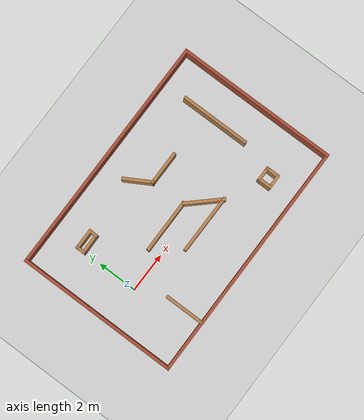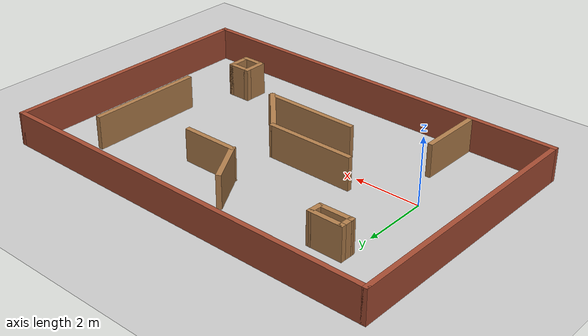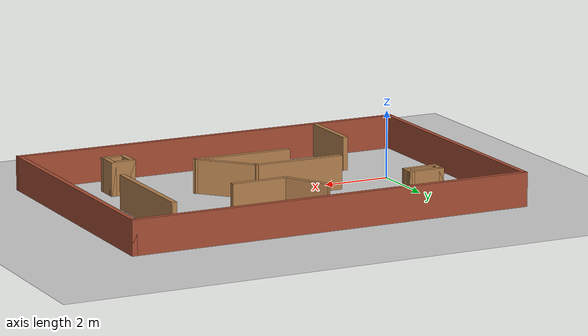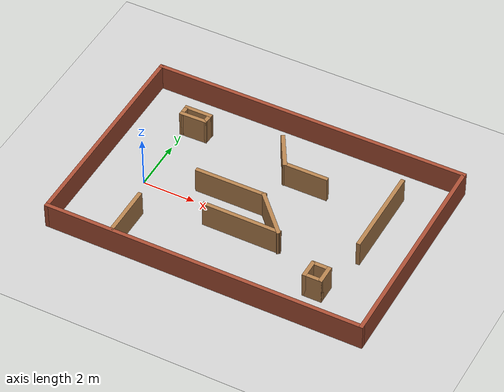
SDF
<sdf version="1.7">
 <world name="__default__">
  <gravity>0 0 -9.8</gravity>
  <magnetic_field>6e-06 2.3e-05 -4.2e-05</magnetic_field>
  <atmosphere type="adiabatic"/>
  <physics type="ode">
   <max_step_size>0.001</max_step_size>
   <real_time_factor>1</real_time_factor>
   <real_time_update_rate>1000</real_time_update_rate>
  </physics>
  <scene><ambient>0.4 0.4 0.4 1</ambient><background>0.7 0.7 0.7 1</background><shadows>1</shadows></scene>
  <audio><device>default</device></audio>
  <spherical_coordinates>
   <surface_model>EARTH_WGS84</surface_model>
   <latitude_deg>0</latitude_deg>
   <longitude_deg>0</longitude_deg>
   <elevation>0</elevation>
   <heading_deg>0</heading_deg>
  </spherical_coordinates>
  <model name="robile_test_world">
   <pose>4.12148 0.657539 0 0 -0 0</pose>
   <link name="Wall_0">
    <collision name="Wall_0_Collision">
     <geometry><box><size>8.15 0.15 1</size></box></geometry>
     <pose>0 0 0.5 0 -0 0</pose>
    </collision>
    <visual name="Wall_0_Visual">
     <pose>0 0 0.5 0 -0 0</pose>
     <geometry><box><size>8.15 0.15 1</size></box></geometry>
     <material>
      <script><uri>file://media/materials/scripts/gazebo.material</uri><name>Gazebo/Bricks</name></script>
      <ambient>1 1 1 1</ambient>
     </material>
     <meta><layer>0</layer></meta>
    </visual>
    <pose>-6 0 0 0 -0 1.5708</pose>
   </link>
   <link name="Wall_1">
    <collision name="Wall_1_Collision">
     <geometry><box><size>12.15 0.15 1</size></box></geometry>
     <pose>0 0 0.5 0 -0 0</pose>
    </collision>
    <visual name="Wall_1_Visual">
     <pose>0 0 0.5 0 -0 0</pose>
     <geometry><box><size>12.15 0.15 1</size></box></geometry>
     <material>
      <script><uri>file://media/materials/scripts/gazebo.material</uri><name>Gazebo/Bricks</name></script>
      <ambient>0.760784 0.662745 0.627451 1</ambient>
     </material>
     <meta><layer>0</layer></meta>
    </visual>
    <pose>0 4 0 0 -0 0</pose>
   </link>
   <link name="Wall_11">
    <collision name="Wall_11_Collision">
     <geometry><box><size>0.5 0.15 1</size></box></geometry>
     <pose>0 0 0.5 0 -0 0</pose>
    </collision>
    <visual name="Wall_11_Visual">
     <pose>0 0 0.5 0 -0 0</pose>
     <geometry><box><size>0.5 0.15 1</size></box></geometry>
     <material>
      <script><uri>file://media/materials/scripts/gazebo.material</uri><name>Gazebo/Wood</name></script>
      <ambient>1 1 1 1</ambient>
     </material>
     <meta><layer>0</layer></meta>
    </visual>
    <pose>-4.138 2.344 0 0 -0 -1.5708</pose>
   </link>
   <link name="Wall_12">
    <collision name="Wall_12_Collision">
     <geometry><box><size>1.07408 0.15 1</size></box></geometry>
     <pose>0 0 0.5 0 -0 0</pose>
    </collision>
    <visual name="Wall_12_Visual">
     <pose>0 0 0.5 0 -0 0</pose>
     <geometry><box><size>1.07408 0.15 1</size></box></geometry>
     <material>
      <script><uri>file://media/materials/scripts/gazebo.material</uri><name>Gazebo/Wood</name></script>
      <ambient>1 1 1 1</ambient>
     </material>
     <meta><layer>0</layer></meta>
    </visual>
    <pose>-3.676 2.178 0 0 -0 0.019478</pose>
   </link>
   <link name="Wall_13">
    <collision name="Wall_13_Collision">
     <geometry><box><size>0.48276 0.15 1</size></box></geometry>
     <pose>0 0 0.5 0 -0 0</pose>
    </collision>
    <visual name="Wall_13_Visual">
     <pose>0 0 0.5 0 -0 0</pose>
     <geometry><box><size>0.48276 0.15 1</size></box></geometry>
     <material>
      <script><uri>file://media/materials/scripts/gazebo.material</uri><name>Gazebo/Wood</name></script>
      <ambient>1 1 1 1</ambient>
     </material>
     <meta><layer>0</layer></meta>
    </visual>
    <pose>-3.2055 2.353 0 0 -0 1.51964</pose>
   </link>
   <link name="Wall_14">
    <collision name="Wall_14_Collision">
     <geometry><box><size>1.09111 0.15 1</size></box></geometry>
     <pose>0 0 0.5 0 -0 0</pose>
    </collision>
    <visual name="Wall_14_Visual">
     <pose>0 0 0.5 0 -0 0</pose>
     <geometry><box><size>1.09111 0.15 1</size></box></geometry>
     <material>
      <script><uri>file://media/materials/scripts/gazebo.material</uri><name>Gazebo/Wood</name></script>
      <ambient>1 1 1 1</ambient>
     </material>
     <meta><layer>0</layer></meta>
    </visual>
    <pose>-3.6675 2.519 0 0 -0 3.14159</pose>
   </link>
   <link name="Wall_16">
    <collision name="Wall_16_Collision">
     <geometry><box><size>2.75 0.15 1</size></box></geometry>
     <pose>0 0 0.5 0 -0 0</pose>
    </collision>
    <visual name="Wall_16_Visual">
     <pose>0 0 0.5 0 -0 0</pose>
     <geometry><box><size>2.75 0.15 1</size></box></geometry>
     <material>
      <script><uri>file://media/materials/scripts/gazebo.material</uri><name>Gazebo/Wood</name></script>
      <ambient>1 1 1 1</ambient>
     </material>
     <meta><layer>0</layer></meta>
    </visual>
    <pose>-0.961 -0.082652 0 0 -0 0</pose>
   </link>
   <link name="Wall_17">
    <collision name="Wall_17_Collision">
     <geometry><box><size>1.9998 0.15 1</size></box></geometry>
     <pose>0 0 0.5 0 -0 0</pose>
    </collision>
    <visual name="Wall_17_Visual">
     <pose>0 0 0.5 0 -0 0</pose>
     <geometry><box><size>1.9998 0.15 1</size></box></geometry>
     <material>
      <script><uri>file://media/materials/scripts/gazebo.material</uri><name>Gazebo/Wood</name></script>
      <ambient>1 1 1 1</ambient>
     </material>
     <meta><layer>0</layer></meta>
    </visual>
    <pose>0.967761 -0.778348 0 0 -0 -0.823284</pose>
   </link>
   <link name="Wall_18">
    <collision name="Wall_18_Collision">
     <geometry><box><size>3.00005 0.15 1</size></box></geometry>
     <pose>0 0 0.5 0 -0 0</pose>
    </collision>
    <visual name="Wall_18_Visual">
     <pose>0 0 0.5 0 -0 0</pose>
     <geometry><box><size>3.00005 0.15 1</size></box></geometry>
     <material>
      <script><uri>file://media/materials/scripts/gazebo.material</uri><name>Gazebo/Wood</name></script>
      <ambient>1 1 1 1</ambient>
     </material>
     <meta><layer>0</layer></meta>
    </visual>
    <pose>0.171522 -1.43076 0 0 -0 3.13563</pose>
   </link>
   <link name="Wall_20">
    <collision name="Wall_20_Collision">
     <geometry><box><size>0.75 0.15 1</size></box></geometry>
     <pose>0 0 0.5 0 -0 0</pose>
    </collision>
    <visual name="Wall_20_Visual">
     <pose>0 0 0.5 0 -0 0</pose>
     <geometry><box><size>0.75 0.15 1</size></box></geometry>
     <material>
      <script><uri>file://media/materials/scripts/gazebo.material</uri><name>Gazebo/Wood</name></script>
      <ambient>1 1 1 1</ambient>
     </material>
     <meta><layer>0</layer></meta>
    </visual>
    <pose>3.286 -2.482 0 0 -0 -1.5708</pose>
   </link>
   <link name="Wall_3">
    <collision name="Wall_3_Collision">
     <geometry><box><size>8.15 0.15 1</size></box></geometry>
     <pose>0 0 0.5 0 -0 0</pose>
    </collision>
    <visual name="Wall_3_Visual">
     <pose>0 0 0.5 0 -0 0</pose>
     <geometry><box><size>8.15 0.15 1</size></box></geometry>
     <material>
      <script><uri>file://media/materials/scripts/gazebo.material</uri><name>Gazebo/Bricks</name></script>
      <ambient>1 1 1 1</ambient>
     </material>
     <meta><layer>0</layer></meta>
    </visual>
    <pose>6 0 0 0 -0 -1.5708</pose>
   </link>
   <link name="Wall_35">
    <collision name="Wall_35_Collision">
     <geometry><box><size>1.5 0.15 1</size></box></geometry>
     <pose>0 0 0.5 0 -0 0</pose>
    </collision>
    <visual name="Wall_35_Visual">
     <pose>0 0 0.5 0 -0 0</pose>
     <geometry><box><size>1.5 0.15 1</size></box></geometry>
     <material>
      <script><uri>file://media/materials/scripts/gazebo.material</uri><name>Gazebo/Wood</name></script>
      <ambient>1 1 1 1</ambient>
     </material>
     <meta><layer>0</layer></meta>
    </visual>
    <pose>-0.070128 2.17843 0 0 -0 -1.0472</pose>
   </link>
   <link name="Wall_36">
    <collision name="Wall_36_Collision">
     <geometry><box><size>1.75 0.15 1</size></box></geometry>
     <pose>0 0 0.5 0 -0 0</pose>
    </collision>
    <visual name="Wall_36_Visual">
     <pose>0 0 0.5 0 -0 0</pose>
     <geometry><box><size>1.75 0.15 1</size></box></geometry>
     <material>
      <script><uri>file://media/materials/scripts/gazebo.material</uri><name>Gazebo/Wood</name></script>
      <ambient>1 1 1 1</ambient>
     </material>
     <meta><layer>0</layer></meta>
    </visual>
    <pose>1.06737 1.59387 0 0 -0 0</pose>
   </link>
   <link name="Wall_38">
    <collision name="Wall_38_Collision">
     <geometry><box><size>0.75 0.15 1</size></box></geometry>
     <pose>0 0 0.5 0 -0 0</pose>
    </collision>
    <visual name="Wall_38_Visual">
     <pose>0 0 0.5 0 -0 0</pose>
     <geometry><box><size>0.75 0.15 1</size></box></geometry>
     <material>
      <script><uri>file://media/materials/scripts/gazebo.material</uri><name>Gazebo/Wood</name></script>
      <ambient>1 1 1 1</ambient>
     </material>
     <meta><layer>0</layer></meta>
    </visual>
    <pose>3.586 -2.182 0 0 -0 0</pose>
   </link>
   <link name="Wall_39">
    <collision name="Wall_39_Collision">
     <geometry><box><size>0.75 0.15 1</size></box></geometry>
     <pose>0 0 0.5 0 -0 0</pose>
    </collision>
    <visual name="Wall_39_Visual">
     <pose>0 0 0.5 0 -0 0</pose>
     <geometry><box><size>0.75 0.15 1</size></box></geometry>
     <material>
      <script><uri>file://media/materials/scripts/gazebo.material</uri><name>Gazebo/Wood</name></script>
      <ambient>1 1 1 1</ambient>
     </material>
     <meta><layer>0</layer></meta>
    </visual>
    <pose>3.886 -2.482 0 0 -0 -1.5708</pose>
   </link>
   <link name="Wall_4">
    <collision name="Wall_4_Collision">
     <geometry><box><size>12.15 0.15 1</size></box></geometry>
     <pose>0 0 0.5 0 -0 0</pose>
    </collision>
    <visual name="Wall_4_Visual">
     <pose>0 0 0.5 0 -0 0</pose>
     <geometry><box><size>12.15 0.15 1</size></box></geometry>
     <material>
      <script><uri>file://media/materials/scripts/gazebo.material</uri><name>Gazebo/Bricks</name></script>
      <ambient>1 1 1 1</ambient>
     </material>
     <meta><layer>0</layer></meta>
    </visual>
    <pose>0 -4 0 0 -0 3.14159</pose>
   </link>
   <link name="Wall_40">
    <collision name="Wall_40_Collision">
     <geometry><box><size>0.75 0.15 1</size></box></geometry>
     <pose>0 0 0.5 0 -0 0</pose>
    </collision>
    <visual name="Wall_40_Visual">
     <pose>0 0 0.5 0 -0 0</pose>
     <geometry><box><size>0.75 0.15 1</size></box></geometry>
     <material>
      <script><uri>file://media/materials/scripts/gazebo.material</uri><name>Gazebo/Wood</name></script>
      <ambient>1 1 1 1</ambient>
     </material>
     <meta><layer>0</layer></meta>
    </visual>
    <pose>3.586 -2.782 0 0 -0 3.14159</pose>
   </link>
   <link name="Wall_42">
    <collision name="Wall_42_Collision">
     <geometry><box><size>3.5 0.15 1</size></box></geometry>
     <pose>0 0 0.5 0 -0 0</pose>
    </collision>
    <visual name="Wall_42_Visual">
     <pose>0 0 0.5 0 -0 0</pose>
     <geometry><box><size>3.5 0.15 1</size></box></geometry>
     <material>
      <script><uri>file://media/materials/scripts/gazebo.material</uri><name>Gazebo/Wood</name></script>
      <ambient>1 1 1 1</ambient>
     </material>
     <meta><layer>0</layer></meta>
    </visual>
    <pose>4.246 1.043 0 0 -0 1.5708</pose>
   </link>
   <link name="Wall_8">
    <collision name="Wall_8_Collision">
     <geometry><box><size>2 0.15 1</size></box></geometry>
     <pose>0 0 0.5 0 -0 0</pose>
    </collision>
    <visual name="Wall_8_Visual">
     <pose>0 0 0.5 0 -0 0</pose>
     <geometry><box><size>2 0.15 1</size></box></geometry>
     <material>
      <script><uri>file://media/materials/scripts/gazebo.material</uri><name>Gazebo/Wood</name></script>
      <ambient>1 1 1 1</ambient>
     </material>
     <meta><layer>0</layer></meta>
    </visual>
    <pose>-3.465 -3.003 0 0 -0 1.5708</pose>
   </link>
   <static>1</static>
  </model>
  <model name="ground_plane">
   <static>1</static>
   <link name="link">
    <collision name="collision">
     <geometry><plane><normal>0 0 1</normal><size>100 100</size></plane></geometry>
     <surface><friction><ode><mu>100</mu><mu2>50</mu2></ode></friction></surface>
    </collision>
    <visual name="visual">
     <cast_shadows>0</cast_shadows>
     <geometry><plane><normal>0 0 1</normal><size>100 100</size></plane></geometry>
     <material>
      <script><uri>file://media/materials/scripts/gazebo.material</uri><name>Gazebo/Grey</name></script>
     </material>
    </visual>
   </link>
   <pose>0.995334 1.02101 0 0 -0 0</pose>
  </model>
  <light name="user_directional_light_0" type="directional">
   <pose>3.82497 -10.4947 1 0 -0 0</pose>
   <diffuse>0.5 0.5 0.5 1</diffuse>
   <specular>0.1 0.1 0.1 1</specular>
   <direction>0.1 0.1 -0.9</direction>
   <attenuation>
    <range>20</range>
    <constant>0.5</constant>
    <linear>0.01</linear>
    <quadratic>0.001</quadratic>
   </attenuation>
  </light>
 </world>
</sdf>
